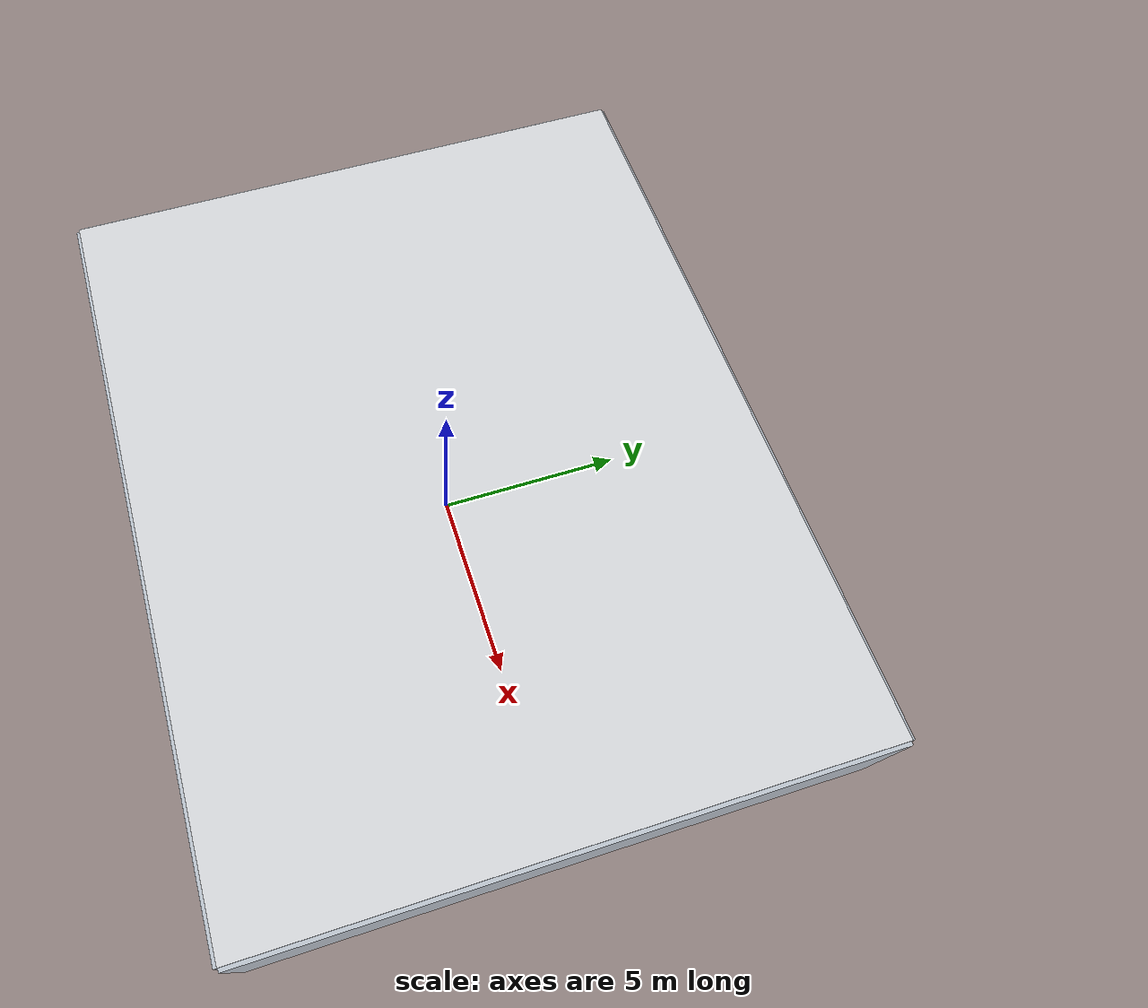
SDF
<?xml version="1.0"?>
<sdf version="1.10">
  <world name="xq_indoor_office">
    <gravity>0 0 -9.80665</gravity>
    <physics name="xq_400hz_physics" type="ode">
      <max_step_size>0.0025</max_step_size>
      <real_time_factor>1.0</real_time_factor>
      <real_time_update_rate>400</real_time_update_rate>
    </physics>

    <plugin filename="gz-sim-physics-system"
            name="gz::sim::systems::Physics"/>
    <plugin filename="gz-sim-user-commands-system"
            name="gz::sim::systems::UserCommands"/>
    <plugin filename="gz-sim-scene-broadcaster-system"
            name="gz::sim::systems::SceneBroadcaster"/>
    <plugin filename="gz-sim-sensors-system"
            name="gz::sim::systems::Sensors">
      <render_engine>ogre2</render_engine>
    </plugin>
    <plugin filename="gz-sim-imu-system"
            name="gz::sim::systems::Imu"/>

    <scene>
      <ambient>0.72 0.74 0.78</ambient>
      <background>0.18 0.20 0.24</background>
      <shadows>true</shadows>
    </scene>

    <light name="xq_ceiling_light" type="directional">
      <pose>0 0 6 0 0 0</pose>
      <cast_shadows>true</cast_shadows>
      <diffuse>0.92 0.92 0.88 1</diffuse>
      <specular>0.25 0.25 0.25 1</specular>
      <attenuation>
        <range>100</range>
        <constant>0.8</constant>
        <linear>0.01</linear>
        <quadratic>0.001</quadratic>
      </attenuation>
      <direction>-0.35 0.15 -0.92</direction>
    </light>

    <!--
      The complete office shell is defined inline.  This world does not include,
      overwrite, or resolve any external map.
    -->
    <model name="xq_office_shell">
      <static>true</static>
      <link name="xq_shell_link">
        <collision name="xq_floor_collision">
          <pose>0 0 -0.06 0 0 0</pose>
          <geometry><box><size>20 16 0.12</size></box></geometry>
        </collision>
        <visual name="xq_floor_visual">
          <pose>0 0 -0.06 0 0 0</pose>
          <geometry><box><size>20 16 0.12</size></box></geometry>
          <material>
            <ambient>0.38 0.40 0.43 1</ambient>
            <diffuse>0.48 0.50 0.53 1</diffuse>
            <specular>0.08 0.08 0.08 1</specular>
          </material>
        </visual>

        <collision name="xq_ceiling_collision">
          <pose>0 0 3.15 0 0 0</pose>
          <geometry><box><size>20 16 0.10</size></box></geometry>
        </collision>
        <visual name="xq_ceiling_visual">
          <pose>0 0 3.15 0 0 0</pose>
          <geometry><box><size>20 16 0.10</size></box></geometry>
          <material>
            <ambient>0.72 0.73 0.74 1</ambient>
            <diffuse>0.82 0.83 0.84 1</diffuse>
          </material>
        </visual>

        <collision name="xq_wall_west_collision">
          <pose>-10 0 1.55 0 0 0</pose>
          <geometry><box><size>0.20 16 3.10</size></box></geometry>
        </collision>
        <visual name="xq_wall_west_visual">
          <pose>-10 0 1.55 0 0 0</pose>
          <geometry><box><size>0.20 16 3.10</size></box></geometry>
          <material><ambient>0.62 0.65 0.69 1</ambient><diffuse>0.72 0.75 0.79 1</diffuse></material>
        </visual>
        <collision name="xq_wall_east_collision">
          <pose>10 0 1.55 0 0 0</pose>
          <geometry><box><size>0.20 16 3.10</size></box></geometry>
        </collision>
        <visual name="xq_wall_east_visual">
          <pose>10 0 1.55 0 0 0</pose>
          <geometry><box><size>0.20 16 3.10</size></box></geometry>
          <material><ambient>0.62 0.65 0.69 1</ambient><diffuse>0.72 0.75 0.79 1</diffuse></material>
        </visual>
        <collision name="xq_wall_south_collision">
          <pose>0 -8 1.55 0 0 0</pose>
          <geometry><box><size>20 0.20 3.10</size></box></geometry>
        </collision>
        <visual name="xq_wall_south_visual">
          <pose>0 -8 1.55 0 0 0</pose>
          <geometry><box><size>20 0.20 3.10</size></box></geometry>
          <material><ambient>0.62 0.65 0.69 1</ambient><diffuse>0.72 0.75 0.79 1</diffuse></material>
        </visual>
        <collision name="xq_wall_north_collision">
          <pose>0 8 1.55 0 0 0</pose>
          <geometry><box><size>20 0.20 3.10</size></box></geometry>
        </collision>
        <visual name="xq_wall_north_visual">
          <pose>0 8 1.55 0 0 0</pose>
          <geometry><box><size>20 0.20 3.10</size></box></geometry>
          <material><ambient>0.62 0.65 0.69 1</ambient><diffuse>0.72 0.75 0.79 1</diffuse></material>
        </visual>

        <!-- Closed central service core produces a repeatable loop trajectory. -->
        <collision name="xq_core_west_collision">
          <pose>-3.0 0 1.55 0 0 0</pose>
          <geometry><box><size>0.18 4.4 3.10</size></box></geometry>
        </collision>
        <visual name="xq_core_west_visual">
          <pose>-3.0 0 1.55 0 0 0</pose>
          <geometry><box><size>0.18 4.4 3.10</size></box></geometry>
          <material><ambient>0.27 0.36 0.43 1</ambient><diffuse>0.34 0.46 0.55 1</diffuse></material>
        </visual>
        <collision name="xq_core_east_collision">
          <pose>3.0 0 1.55 0 0 0</pose>
          <geometry><box><size>0.18 4.4 3.10</size></box></geometry>
        </collision>
        <visual name="xq_core_east_visual">
          <pose>3.0 0 1.55 0 0 0</pose>
          <geometry><box><size>0.18 4.4 3.10</size></box></geometry>
          <material><ambient>0.27 0.36 0.43 1</ambient><diffuse>0.34 0.46 0.55 1</diffuse></material>
        </visual>
        <collision name="xq_core_south_collision">
          <pose>0 -2.2 1.55 0 0 0</pose>
          <geometry><box><size>6.18 0.18 3.10</size></box></geometry>
        </collision>
        <visual name="xq_core_south_visual">
          <pose>0 -2.2 1.55 0 0 0</pose>
          <geometry><box><size>6.18 0.18 3.10</size></box></geometry>
          <material><ambient>0.27 0.36 0.43 1</ambient><diffuse>0.34 0.46 0.55 1</diffuse></material>
        </visual>
        <collision name="xq_core_north_collision">
          <pose>0 2.2 1.55 0 0 0</pose>
          <geometry><box><size>6.18 0.18 3.10</size></box></geometry>
        </collision>
        <visual name="xq_core_north_visual">
          <pose>0 2.2 1.55 0 0 0</pose>
          <geometry><box><size>6.18 0.18 3.10</size></box></geometry>
          <material><ambient>0.27 0.36 0.43 1</ambient><diffuse>0.34 0.46 0.55 1</diffuse></material>
        </visual>

        <!-- Offset partitions add door gaps, corners, and non-symmetric returns. -->
        <collision name="xq_partition_nw_collision">
          <pose>-6.7 3.9 1.30 0 0 0</pose>
          <geometry><box><size>4.8 0.16 2.60</size></box></geometry>
        </collision>
        <visual name="xq_partition_nw_visual">
          <pose>-6.7 3.9 1.30 0 0 0</pose>
          <geometry><box><size>4.8 0.16 2.60</size></box></geometry>
          <material><ambient>0.61 0.54 0.39 1</ambient><diffuse>0.72 0.65 0.49 1</diffuse></material>
        </visual>
        <collision name="xq_partition_ne_collision">
          <pose>6.8 4.7 1.30 0 0 0</pose>
          <geometry><box><size>0.16 5.2 2.60</size></box></geometry>
        </collision>
        <visual name="xq_partition_ne_visual">
          <pose>6.8 4.7 1.30 0 0 0</pose>
          <geometry><box><size>0.16 5.2 2.60</size></box></geometry>
          <material><ambient>0.48 0.57 0.43 1</ambient><diffuse>0.58 0.68 0.53 1</diffuse></material>
        </visual>
        <collision name="xq_partition_sw_collision">
          <pose>-5.8 -4.8 1.30 0 0 0</pose>
          <geometry><box><size>0.16 3.8 2.60</size></box></geometry>
        </collision>
        <visual name="xq_partition_sw_visual">
          <pose>-5.8 -4.8 1.30 0 0 0</pose>
          <geometry><box><size>0.16 3.8 2.60</size></box></geometry>
          <material><ambient>0.50 0.42 0.52 1</ambient><diffuse>0.61 0.52 0.63 1</diffuse></material>
        </visual>
        <collision name="xq_partition_se_collision">
          <pose>6.6 -4.5 1.30 0 0 0</pose>
          <geometry><box><size>5.0 0.16 2.60</size></box></geometry>
        </collision>
        <visual name="xq_partition_se_visual">
          <pose>6.6 -4.5 1.30 0 0 0</pose>
          <geometry><box><size>5.0 0.16 2.60</size></box></geometry>
          <material><ambient>0.47 0.49 0.60 1</ambient><diffuse>0.57 0.59 0.71 1</diffuse></material>
        </visual>
      </link>
    </model>

    <model name="xq_office_features">
      <static>true</static>
      <link name="xq_features_link">
        <collision name="xq_column_01_collision">
          <pose>-7.6 1.3 1.5 0 0 0</pose>
          <geometry><cylinder><radius>0.24</radius><length>3.0</length></cylinder></geometry>
        </collision>
        <visual name="xq_column_01_visual">
          <pose>-7.6 1.3 1.5 0 0 0</pose>
          <geometry><cylinder><radius>0.24</radius><length>3.0</length></cylinder></geometry>
          <material><ambient>0.72 0.43 0.12 1</ambient><diffuse>0.87 0.54 0.16 1</diffuse></material>
        </visual>
        <collision name="xq_column_02_collision">
          <pose>7.4 -0.8 1.5 0 0 0</pose>
          <geometry><cylinder><radius>0.30</radius><length>3.0</length></cylinder></geometry>
        </collision>
        <visual name="xq_column_02_visual">
          <pose>7.4 -0.8 1.5 0 0 0</pose>
          <geometry><cylinder><radius>0.30</radius><length>3.0</length></cylinder></geometry>
          <material><ambient>0.18 0.49 0.58 1</ambient><diffuse>0.22 0.62 0.72 1</diffuse></material>
        </visual>
        <collision name="xq_column_03_collision">
          <pose>-4.6 6.3 1.5 0 0 0</pose>
          <geometry><cylinder><radius>0.20</radius><length>3.0</length></cylinder></geometry>
        </collision>
        <visual name="xq_column_03_visual">
          <pose>-4.6 6.3 1.5 0 0 0</pose>
          <geometry><cylinder><radius>0.20</radius><length>3.0</length></cylinder></geometry>
          <material><ambient>0.30 0.58 0.29 1</ambient><diffuse>0.38 0.71 0.36 1</diffuse></material>
        </visual>

        <collision name="xq_desk_01_collision">
          <pose>-7.8 6.2 0.45 0 0 0.25</pose>
          <geometry><box><size>2.1 0.8 0.9</size></box></geometry>
        </collision>
        <visual name="xq_desk_01_visual">
          <pose>-7.8 6.2 0.45 0 0 0.25</pose>
          <geometry><box><size>2.1 0.8 0.9</size></box></geometry>
          <material><ambient>0.38 0.20 0.09 1</ambient><diffuse>0.51 0.29 0.12 1</diffuse></material>
        </visual>
        <collision name="xq_desk_02_collision">
          <pose>7.8 6.6 0.55 0 0 -0.35</pose>
          <geometry><box><size>1.7 0.9 1.1</size></box></geometry>
        </collision>
        <visual name="xq_desk_02_visual">
          <pose>7.8 6.6 0.55 0 0 -0.35</pose>
          <geometry><box><size>1.7 0.9 1.1</size></box></geometry>
          <material><ambient>0.23 0.28 0.36 1</ambient><diffuse>0.31 0.38 0.49 1</diffuse></material>
        </visual>
        <collision name="xq_cabinet_01_collision">
          <pose>-8.8 -1.7 1.0 0 0 0</pose>
          <geometry><box><size>0.7 1.3 2.0</size></box></geometry>
        </collision>
        <visual name="xq_cabinet_01_visual">
          <pose>-8.8 -1.7 1.0 0 0 0</pose>
          <geometry><box><size>0.7 1.3 2.0</size></box></geometry>
          <material><ambient>0.48 0.50 0.52 1</ambient><diffuse>0.58 0.60 0.62 1</diffuse></material>
        </visual>
        <collision name="xq_cabinet_02_collision">
          <pose>8.9 2.5 0.75 0 0 0</pose>
          <geometry><box><size>0.6 1.8 1.5</size></box></geometry>
        </collision>
        <visual name="xq_cabinet_02_visual">
          <pose>8.9 2.5 0.75 0 0 0</pose>
          <geometry><box><size>0.6 1.8 1.5</size></box></geometry>
          <material><ambient>0.56 0.50 0.22 1</ambient><diffuse>0.67 0.61 0.27 1</diffuse></material>
        </visual>
        <collision name="xq_crate_01_collision">
          <pose>4.8 -6.4 0.40 0.12 0.04 0.55</pose>
          <geometry><box><size>0.8 0.8 0.8</size></box></geometry>
        </collision>
        <visual name="xq_crate_01_visual">
          <pose>4.8 -6.4 0.40 0.12 0.04 0.55</pose>
          <geometry><box><size>0.8 0.8 0.8</size></box></geometry>
          <material><ambient>0.54 0.27 0.10 1</ambient><diffuse>0.68 0.35 0.13 1</diffuse></material>
        </visual>
      </link>
    </model>

    <model name="xq_dynamic_obstacle">
      <pose>0 -5.8 0.55 0 0 0</pose>
      <link name="xq_dynamic_obstacle_link">
        <gravity>false</gravity>
        <inertial>
          <mass>12.0</mass>
          <inertia>
            <ixx>1.30</ixx><ixy>0</ixy><ixz>0</ixz>
            <iyy>1.30</iyy><iyz>0</iyz><izz>0.80</izz>
          </inertia>
        </inertial>
        <collision name="xq_dynamic_obstacle_collision">
          <geometry><box><size>0.70 0.70 1.10</size></box></geometry>
        </collision>
        <visual name="xq_dynamic_obstacle_visual">
          <geometry><box><size>0.70 0.70 1.10</size></box></geometry>
          <material><ambient>0.68 0.08 0.06 1</ambient><diffuse>0.86 0.11 0.08 1</diffuse></material>
        </visual>
      </link>
      <plugin filename="gz-sim-velocity-control-system"
              name="gz::sim::systems::VelocityControl">
        <initial_linear>-0.10 0 0</initial_linear>
        <initial_angular>0 0 0</initial_angular>
      </plugin>
    </model>

    <include>
      <name>xq_agent_01</name>
      <uri>model://xq_iris_mid360</uri>
      <pose>-7.0 -5.0 1.2 0 0 0</pose>
    </include>
  </world>
</sdf>

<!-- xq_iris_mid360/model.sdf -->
<sdf version="1.10">
  <model name="xq_iris_mid360" canonical_link="xq_base_link">
    <static>false</static>
    <self_collide>false</self_collide>
    <allow_auto_disable>false</allow_auto_disable>

    <link name="xq_base_link">
      <gravity>false</gravity>
      <inertial>
        <mass>1.40</mass>
        <inertia>
          <ixx>0.030</ixx>
          <ixy>0.0</ixy>
          <ixz>0.0</ixz>
          <iyy>0.030</iyy>
          <iyz>0.0</iyz>
          <izz>0.055</izz>
        </inertia>
      </inertial>

      <collision name="xq_body_collision">
        <geometry>
          <box>
            <size>0.30 0.22 0.10</size>
          </box>
        </geometry>
      </collision>
      <visual name="xq_body_visual">
        <geometry>
          <box>
            <size>0.30 0.22 0.10</size>
          </box>
        </geometry>
        <material>
          <ambient>0.035 0.045 0.060 1</ambient>
          <diffuse>0.055 0.075 0.100 1</diffuse>
          <specular>0.35 0.35 0.35 1</specular>
        </material>
      </visual>

      <collision name="xq_arm_ne_sw_collision">
        <pose>0 0 0.015 0 0 0.78539816339</pose>
        <geometry>
          <box>
            <size>0.66 0.035 0.028</size>
          </box>
        </geometry>
      </collision>
      <visual name="xq_arm_ne_sw_visual">
        <pose>0 0 0.015 0 0 0.78539816339</pose>
        <geometry>
          <box>
            <size>0.66 0.035 0.028</size>
          </box>
        </geometry>
        <material>
          <ambient>0.12 0.13 0.15 1</ambient>
          <diffuse>0.18 0.20 0.23 1</diffuse>
        </material>
      </visual>

      <collision name="xq_arm_nw_se_collision">
        <pose>0 0 0.015 0 0 -0.78539816339</pose>
        <geometry>
          <box>
            <size>0.66 0.035 0.028</size>
          </box>
        </geometry>
      </collision>
      <visual name="xq_arm_nw_se_visual">
        <pose>0 0 0.015 0 0 -0.78539816339</pose>
        <geometry>
          <box>
            <size>0.66 0.035 0.028</size>
          </box>
        </geometry>
        <material>
          <ambient>0.12 0.13 0.15 1</ambient>
          <diffuse>0.18 0.20 0.23 1</diffuse>
        </material>
      </visual>

      <visual name="xq_rotor_front_left_visual">
        <pose>0.235 0.235 0.045 0 0 0</pose>
        <geometry>
          <cylinder>
            <radius>0.105</radius>
            <length>0.008</length>
          </cylinder>
        </geometry>
        <transparency>0.35</transparency>
        <material>
          <ambient>0.08 0.55 0.78 1</ambient>
          <diffuse>0.08 0.55 0.78 1</diffuse>
        </material>
      </visual>
      <visual name="xq_rotor_front_right_visual">
        <pose>0.235 -0.235 0.045 0 0 0</pose>
        <geometry>
          <cylinder>
            <radius>0.105</radius>
            <length>0.008</length>
          </cylinder>
        </geometry>
        <transparency>0.35</transparency>
        <material>
          <ambient>0.08 0.55 0.78 1</ambient>
          <diffuse>0.08 0.55 0.78 1</diffuse>
        </material>
      </visual>
      <visual name="xq_rotor_rear_left_visual">
        <pose>-0.235 0.235 0.045 0 0 0</pose>
        <geometry>
          <cylinder>
            <radius>0.105</radius>
            <length>0.008</length>
          </cylinder>
        </geometry>
        <transparency>0.35</transparency>
        <material>
          <ambient>0.78 0.29 0.10 1</ambient>
          <diffuse>0.78 0.29 0.10 1</diffuse>
        </material>
      </visual>
      <visual name="xq_rotor_rear_right_visual">
        <pose>-0.235 -0.235 0.045 0 0 0</pose>
        <geometry>
          <cylinder>
            <radius>0.105</radius>
            <length>0.008</length>
          </cylinder>
        </geometry>
        <transparency>0.35</transparency>
        <material>
          <ambient>0.78 0.29 0.10 1</ambient>
          <diffuse>0.78 0.29 0.10 1</diffuse>
        </material>
      </visual>
    </link>

    <link name="xq_mid360_link">
      <pose relative_to="xq_base_link">0.04 0 0.135 0 0 0</pose>
      <gravity>false</gravity>
      <inertial>
        <mass>0.265</mass>
        <inertia>
          <ixx>0.00045</ixx>
          <ixy>0.0</ixy>
          <ixz>0.0</ixz>
          <iyy>0.00045</iyy>
          <iyz>0.0</iyz>
          <izz>0.00055</izz>
        </inertia>
      </inertial>
      <collision name="xq_mid360_collision">
        <geometry>
          <cylinder>
            <radius>0.040</radius>
            <length>0.065</length>
          </cylinder>
        </geometry>
      </collision>
      <visual name="xq_mid360_visual">
        <geometry>
          <cylinder>
            <radius>0.040</radius>
            <length>0.065</length>
          </cylinder>
        </geometry>
        <material>
          <ambient>0.02 0.02 0.025 1</ambient>
          <diffuse>0.035 0.035 0.045 1</diffuse>
          <specular>0.55 0.55 0.55 1</specular>
        </material>
      </visual>

      <!-- MID-360-like aggregate raster: 720 x 32 x 10 Hz ~= 230 kpoints/s. -->
      <sensor name="xq_mid360_lidar" type="gpu_lidar">
        <!-- Gazebo publishes LaserScan here and PointCloudPacked on /points. -->
        <topic>/xq/lidar</topic>
        <always_on>true</always_on>
        <update_rate>10</update_rate>
        <visualize>false</visualize>
        <lidar>
          <scan>
            <horizontal>
              <samples>720</samples>
              <resolution>1</resolution>
              <min_angle>-3.14159265359</min_angle>
              <max_angle>3.14159265359</max_angle>
            </horizontal>
            <vertical>
              <samples>32</samples>
              <resolution>1</resolution>
              <min_angle>-0.12217304764</min_angle>
              <max_angle>0.90757121104</max_angle>
            </vertical>
          </scan>
          <range>
            <min>0.10</min>
            <max>40.0</max>
            <resolution>0.02</resolution>
          </range>
          <noise>
            <type>gaussian</type>
            <mean>0.0</mean>
            <stddev>0.015</stddev>
          </noise>
        </lidar>
      </sensor>
    </link>

    <joint name="xq_mid360_joint" type="fixed">
      <parent>xq_base_link</parent>
      <child>xq_mid360_link</child>
    </joint>

    <link name="xq_imu_link">
      <pose relative_to="xq_base_link">0 0 0.015 0 0 0</pose>
      <gravity>false</gravity>
      <inertial>
        <mass>0.020</mass>
        <inertia>
          <ixx>0.00001</ixx>
          <ixy>0.0</ixy>
          <ixz>0.0</ixz>
          <iyy>0.00001</iyy>
          <iyz>0.0</iyz>
          <izz>0.00001</izz>
        </inertia>
      </inertial>
      <sensor name="xq_imu_sensor" type="imu">
        <topic>/xq/imu</topic>
        <always_on>true</always_on>
        <update_rate>200</update_rate>
        <imu>
          <angular_velocity>
            <x><noise type="gaussian"><mean>0</mean><stddev>0.00020</stddev></noise></x>
            <y><noise type="gaussian"><mean>0</mean><stddev>0.00020</stddev></noise></y>
            <z><noise type="gaussian"><mean>0</mean><stddev>0.00020</stddev></noise></z>
          </angular_velocity>
          <linear_acceleration>
            <x><noise type="gaussian"><mean>0</mean><stddev>0.0020</stddev></noise></x>
            <y><noise type="gaussian"><mean>0</mean><stddev>0.0020</stddev></noise></y>
            <z><noise type="gaussian"><mean>0</mean><stddev>0.0020</stddev></noise></z>
          </linear_acceleration>
        </imu>
      </sensor>
    </link>

    <joint name="xq_imu_joint" type="fixed">
      <parent>xq_base_link</parent>
      <child>xq_imu_link</child>
    </joint>

    <plugin filename="gz-sim-velocity-control-system"
            name="gz::sim::systems::VelocityControl">
      <initial_linear>0 0 0</initial_linear>
      <initial_angular>0 0 0</initial_angular>
    </plugin>

    <plugin filename="gz-sim-odometry-publisher-system"
            name="gz::sim::systems::OdometryPublisher">
      <dimensions>3</dimensions>
      <odom_publish_frequency>50</odom_publish_frequency>
      <odom_frame>xq_world</odom_frame>
      <robot_base_frame>xq_base_link</robot_base_frame>
    </plugin>
  </model>
</sdf>
